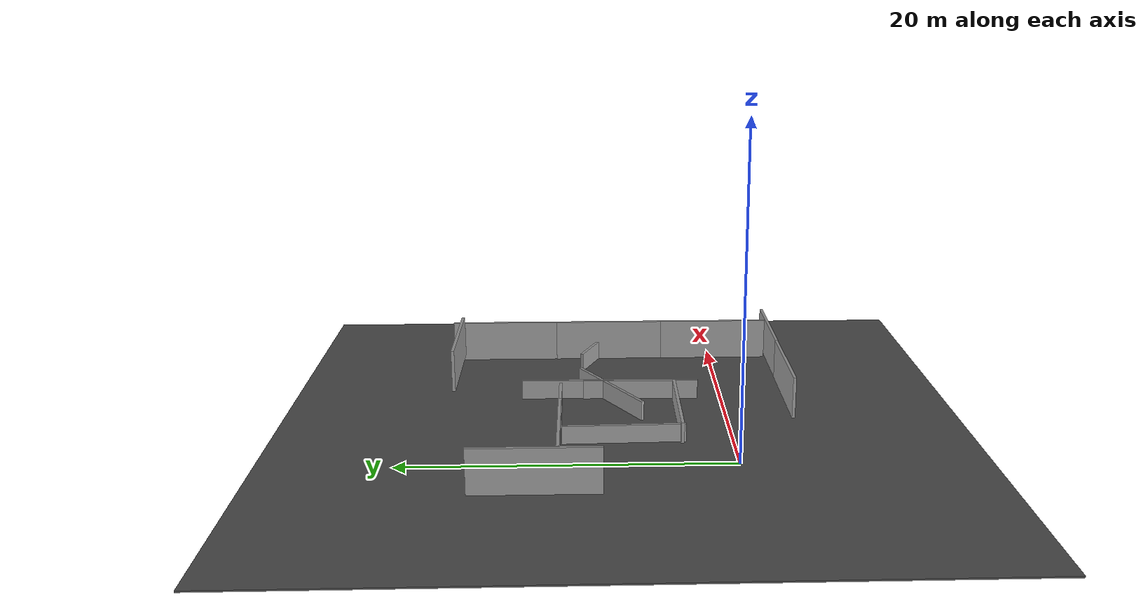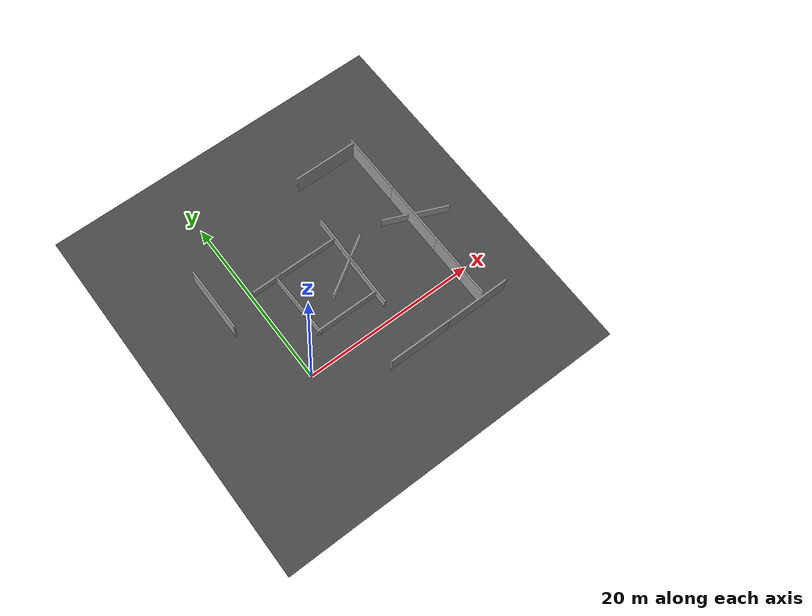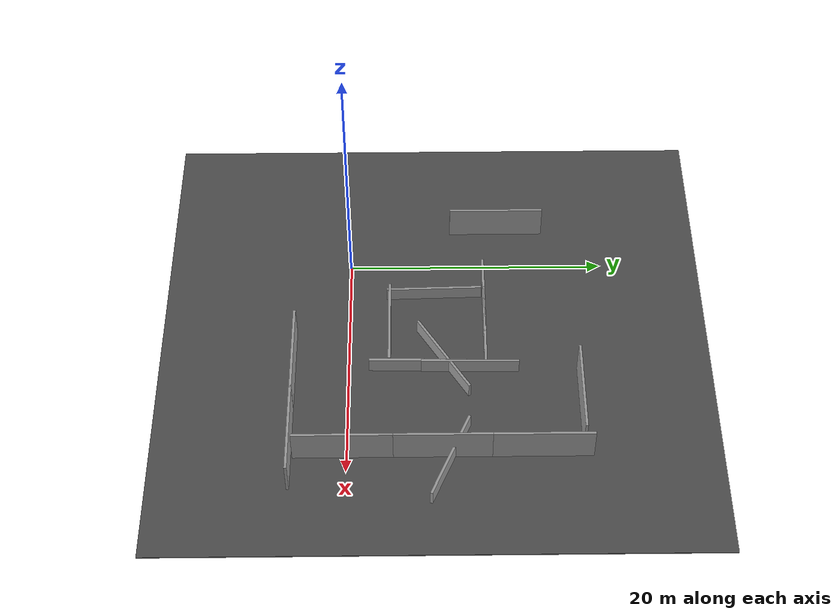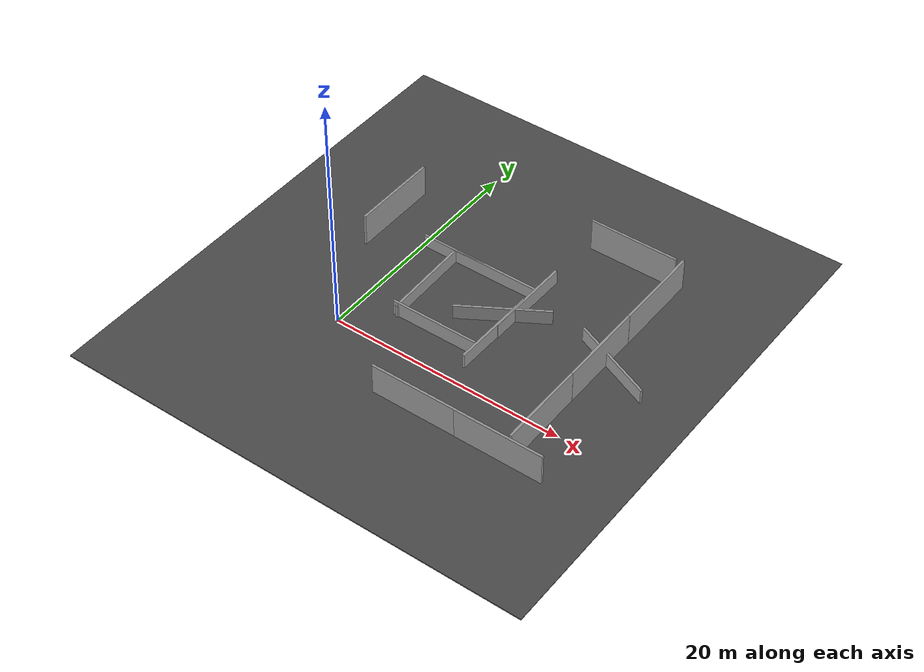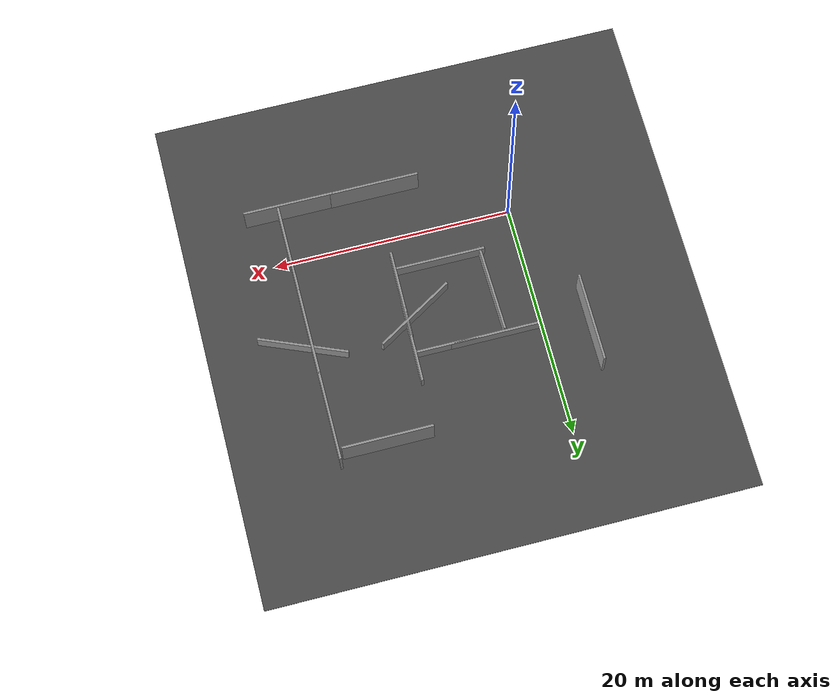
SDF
<sdf version="1.6">
 <world name="default">
  <plugin name="gazebo_occupancy_map" filename="libgazebo_2Dmap_plugin.so">
   <map_resolution>0.1</map_resolution>
   <map_height>0.3</map_height>
   <map_size_x>40</map_size_x>
   <map_size_y>40</map_size_y>
  </plugin>
  <gravity>0 0 -9.8</gravity>
  <magnetic_field>6e-06 2.3e-05 -4.2e-05</magnetic_field>
  <atmosphere type="adiabatic"/>
  <physics name="default_physics" default="0" type="ode">
   <max_step_size>0.001</max_step_size>
   <real_time_factor>1</real_time_factor>
   <real_time_update_rate>1000</real_time_update_rate>
  </physics>
  <scene><ambient>0.4 0.4 0.4 1</ambient><background>0.7 0.7 0.7 1</background><shadows>1</shadows></scene>
  <spherical_coordinates>
   <surface_model>EARTH_WGS84</surface_model>
   <latitude_deg>0</latitude_deg>
   <longitude_deg>0</longitude_deg>
   <elevation>0</elevation>
   <heading_deg>0</heading_deg>
  </spherical_coordinates>
  <model name="asphalt_plane">
   <static>1</static>
   <link name="link">
    <collision name="collision"><geometry><box><size>40.5763 42.5951 0.1</size></box></geometry></collision>
    <visual name="visual">
     <cast_shadows>0</cast_shadows>
     <geometry><box><size>40.5763 42.5951 0.1</size></box></geometry>
     <material>
      <script>
       <uri>model://asphalt_plane/materials/scripts</uri>
       <uri>model://asphalt_plane/materials/textures</uri>
       <name>vrc/asphalt</name>
      </script>
     </material>
    </visual>
   </link>
   <pose>6.91735 6.67115 0 0 -0 0</pose>
  </model>
  <model name="grey_wall">
   <static>1</static>
   <link name="link">
    <pose>0 0 1.4 0 -0 0</pose>
    <collision name="collision"><geometry><box><size>7.5 0.2 2.8</size></box></geometry></collision>
    <visual name="visual">
     <cast_shadows>0</cast_shadows>
     <geometry><box><size>7.5 0.2 2.8</size></box></geometry>
     <material>
      <script>
       <uri>model://grey_wall/materials/scripts</uri>
       <uri>model://grey_wall/materials/textures</uri>
       <name>vrc/grey_wall</name>
      </script>
     </material>
    </visual>
   </link>
   <pose>6.83237 10.5455 -1.62587 0 -0 0</pose>
  </model>
  <model name="grey_wall_clone">
   <static>1</static>
   <link name="link">
    <pose>0 0 1.4 0 -0 0</pose>
    <collision name="collision"><geometry><box><size>7.5 0.2 2.8</size></box></geometry></collision>
    <visual name="visual">
     <cast_shadows>0</cast_shadows>
     <geometry><box><size>7.5 0.2 2.8</size></box></geometry>
     <material>
      <script>
       <uri>model://grey_wall/materials/scripts</uri>
       <uri>model://grey_wall/materials/textures</uri>
       <name>vrc/grey_wall</name>
      </script>
     </material>
    </visual>
   </link>
   <pose>3.21202 6.63046 -1.61577 0 -0 1.59621</pose>
  </model>
  <model name="grey_wall_clone_0">
   <static>1</static>
   <link name="link">
    <pose>0 0 1.4 0 -0 0</pose>
    <collision name="collision"><geometry><box><size>7.5 0.2 2.8</size></box></geometry></collision>
    <visual name="visual">
     <cast_shadows>0</cast_shadows>
     <geometry><box><size>7.5 0.2 2.8</size></box></geometry>
     <material>
      <script>
       <uri>model://grey_wall/materials/scripts</uri>
       <uri>model://grey_wall/materials/textures</uri>
       <name>vrc/grey_wall</name>
      </script>
     </material>
    </visual>
   </link>
   <pose>6.6817 3.12142 -1.43482 0 -0 0</pose>
  </model>
  <model name="grey_wall_clone_clone">
   <static>1</static>
   <link name="link">
    <pose>0 0 1.4 0 -0 0</pose>
    <collision name="collision"><geometry><box><size>7.5 0.2 2.8</size></box></geometry></collision>
    <visual name="visual">
     <cast_shadows>0</cast_shadows>
     <geometry><box><size>7.5 0.2 2.8</size></box></geometry>
     <material>
      <script>
       <uri>model://grey_wall/materials/scripts</uri>
       <uri>model://grey_wall/materials/textures</uri>
       <name>vrc/grey_wall</name>
      </script>
     </material>
    </visual>
   </link>
   <pose>10.6715 9.33109 -1.50615 0 -0 1.55688</pose>
  </model>
  <model name="grey_wall_0">
   <static>1</static>
   <link name="link">
    <pose>0 0 1.4 0 -0 0</pose>
    <collision name="collision"><geometry><box><size>7.5 0.2 2.8</size></box></geometry></collision>
    <visual name="visual">
     <cast_shadows>0</cast_shadows>
     <geometry><box><size>7.5 0.2 2.8</size></box></geometry>
     <material>
      <script>
       <uri>model://grey_wall/materials/scripts</uri>
       <uri>model://grey_wall/materials/textures</uri>
       <name>vrc/grey_wall</name>
      </script>
     </material>
    </visual>
   </link>
   <pose>-3.72663 11.7299 0 0 0 -1.5698</pose>
  </model>
  <model name="grey_wall_0_clone">
   <static>1</static>
   <link name="link">
    <pose>0 0 1.4 0 -0 0</pose>
    <collision name="collision"><geometry><box><size>7.5 0.2 2.8</size></box></geometry></collision>
    <visual name="visual">
     <cast_shadows>0</cast_shadows>
     <geometry><box><size>7.5 0.2 2.8</size></box></geometry>
     <material>
      <script>
       <uri>model://grey_wall/materials/scripts</uri>
       <uri>model://grey_wall/materials/textures</uri>
       <name>vrc/grey_wall</name>
      </script>
     </material>
    </visual>
   </link>
   <pose>18.6774 14.557 0 0 0 -1.5698</pose>
  </model>
  <model name="grey_wall_0_clone_clone">
   <static>1</static>
   <link name="link">
    <pose>0 0 1.4 0 -0 0</pose>
    <collision name="collision"><geometry><box><size>7.5 0.2 2.8</size></box></geometry></collision>
    <visual name="visual">
     <cast_shadows>0</cast_shadows>
     <geometry><box><size>7.5 0.2 2.8</size></box></geometry>
     <material>
      <script>
       <uri>model://grey_wall/materials/scripts</uri>
       <uri>model://grey_wall/materials/textures</uri>
       <name>vrc/grey_wall</name>
      </script>
     </material>
    </visual>
   </link>
   <pose>18.6719 7.22112 0 0 0 -1.5698</pose>
  </model>
  <model name="grey_wall_0_clone_clone_clone">
   <static>1</static>
   <link name="link">
    <pose>0 0 1.4 0 -0 0</pose>
    <collision name="collision"><geometry><box><size>7.5 0.2 2.8</size></box></geometry></collision>
    <visual name="visual">
     <cast_shadows>0</cast_shadows>
     <geometry><box><size>7.5 0.2 2.8</size></box></geometry>
     <material>
      <script>
       <uri>model://grey_wall/materials/scripts</uri>
       <uri>model://grey_wall/materials/textures</uri>
       <name>vrc/grey_wall</name>
      </script>
     </material>
    </visual>
   </link>
   <pose>18.6701 -0.251622 0 0 0 -1.5698</pose>
  </model>
  <model name="grey_wall_clone_0_clone">
   <static>1</static>
   <link name="link">
    <pose>0 0 1.4 0 -0 0</pose>
    <collision name="collision"><geometry><box><size>7.5 0.2 2.8</size></box></geometry></collision>
    <visual name="visual">
     <cast_shadows>0</cast_shadows>
     <geometry><box><size>7.5 0.2 2.8</size></box></geometry>
     <material>
      <script>
       <uri>model://grey_wall/materials/scripts</uri>
       <uri>model://grey_wall/materials/textures</uri>
       <name>vrc/grey_wall</name>
      </script>
     </material>
    </visual>
   </link>
   <pose>17.7868 -4.21137 -0.07668 0 -0 0</pose>
  </model>
  <model name="grey_wall_clone_0_clone_0">
   <static>1</static>
   <link name="link">
    <pose>0 0 1.4 0 -0 0</pose>
    <collision name="collision"><geometry><box><size>7.5 0.2 2.8</size></box></geometry></collision>
    <visual name="visual">
     <cast_shadows>0</cast_shadows>
     <geometry><box><size>7.5 0.2 2.8</size></box></geometry>
     <material>
      <script>
       <uri>model://grey_wall/materials/scripts</uri>
       <uri>model://grey_wall/materials/textures</uri>
       <name>vrc/grey_wall</name>
      </script>
     </material>
    </visual>
   </link>
   <pose>14.6689 17.6009 0.498627 0 -0 0</pose>
  </model>
  <model name="grey_wall_clone_0_clone_clone">
   <static>1</static>
   <link name="link">
    <pose>0 0 1.4 0 -0 0</pose>
    <collision name="collision"><geometry><box><size>7.5 0.2 2.8</size></box></geometry></collision>
    <visual name="visual">
     <cast_shadows>0</cast_shadows>
     <geometry><box><size>7.5 0.2 2.8</size></box></geometry>
     <material>
      <script>
       <uri>model://grey_wall/materials/scripts</uri>
       <uri>model://grey_wall/materials/textures</uri>
       <name>vrc/grey_wall</name>
      </script>
     </material>
    </visual>
   </link>
   <pose>10.4958 -4.20064 -0.07668 0 -0 0</pose>
  </model>
  <model name="grey_wall_clone_clone_clone">
   <static>1</static>
   <link name="link">
    <pose>0 0 1.4 0 -0 0</pose>
    <collision name="collision"><geometry><box><size>7.5 0.2 2.8</size></box></geometry></collision>
    <visual name="visual">
     <cast_shadows>0</cast_shadows>
     <geometry><box><size>7.5 0.2 2.8</size></box></geometry>
     <material>
      <script>
       <uri>model://grey_wall/materials/scripts</uri>
       <uri>model://grey_wall/materials/textures</uri>
       <name>vrc/grey_wall</name>
      </script>
     </material>
    </visual>
   </link>
   <pose>10.5626 5.31652 -1.50615 0 -0 1.55688</pose>
  </model>
  <model name="grey_wall_clone_clone_clone_0">
   <static>1</static>
   <link name="link">
    <pose>0 0 1.4 0 -0 0</pose>
    <collision name="collision"><geometry><box><size>7.5 0.2 2.8</size></box></geometry></collision>
    <visual name="visual">
     <cast_shadows>0</cast_shadows>
     <geometry><box><size>7.5 0.2 2.8</size></box></geometry>
     <material>
      <script>
       <uri>model://grey_wall/materials/scripts</uri>
       <uri>model://grey_wall/materials/textures</uri>
       <name>vrc/grey_wall</name>
      </script>
     </material>
    </visual>
   </link>
   <pose>19.3685 7.71283 -1.50615 0 0 -0.398859</pose>
  </model>
  <model name="grey_wall_clone_clone_clone_0_clone">
   <static>1</static>
   <link name="link">
    <pose>0 0 1.4 0 -0 0</pose>
    <collision name="collision"><geometry><box><size>7.5 0.2 2.8</size></box></geometry></collision>
    <visual name="visual">
     <cast_shadows>0</cast_shadows>
     <geometry><box><size>7.5 0.2 2.8</size></box></geometry>
     <material>
      <script>
       <uri>model://grey_wall/materials/scripts</uri>
       <uri>model://grey_wall/materials/textures</uri>
       <name>vrc/grey_wall</name>
      </script>
     </material>
    </visual>
   </link>
   <pose>9.89686 7.30166 -1.50615 0 -0 0.546786</pose>
  </model>
  <model name="grey_wall_clone_1">
   <static>1</static>
   <link name="link">
    <pose>0 0 1.4 0 -0 0</pose>
    <collision name="collision"><geometry><box><size>7.5 0.2 2.8</size></box></geometry></collision>
    <visual name="visual">
     <cast_shadows>0</cast_shadows>
     <geometry><box><size>7.5 0.2 2.8</size></box></geometry>
     <material>
      <script>
       <uri>model://grey_wall/materials/scripts</uri>
       <uri>model://grey_wall/materials/textures</uri>
       <name>vrc/grey_wall</name>
      </script>
     </material>
    </visual>
   </link>
   <pose>3.91746 10.5611 -1.62587 0 -0 0</pose>
  </model>
 </world>
</sdf>
